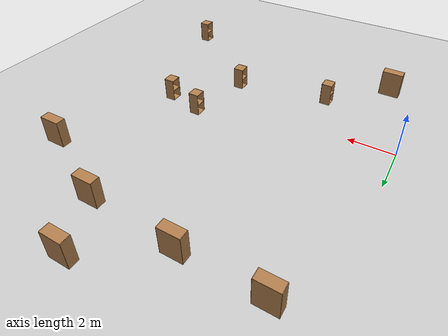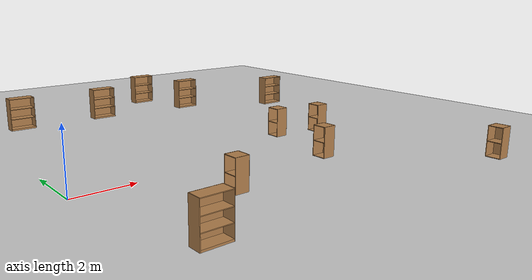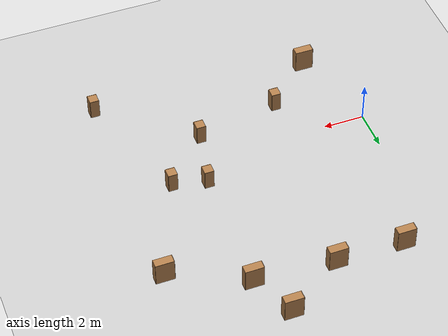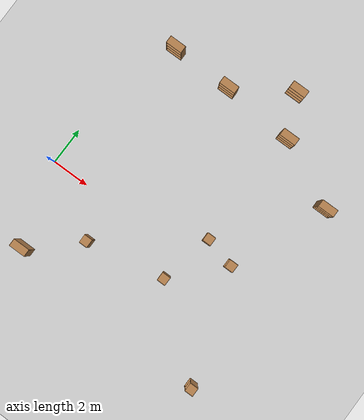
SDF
<sdf version="1.6">
 <world name="default">
  <model name="ground_plane">
   <static>1</static>
   <link name="link">
    <collision name="collision">
     <geometry><plane><normal>0 0 1</normal><size>100 100</size></plane></geometry>
     <surface><friction><ode><mu>100</mu><mu2>50</mu2></ode></friction></surface>
    </collision>
    <visual name="visual">
     <cast_shadows>0</cast_shadows>
     <geometry><plane><normal>0 0 1</normal><size>100 100</size></plane></geometry>
     <material>
      <script><uri>file://media/materials/scripts/gazebo.material</uri><name>Gazebo/Grey</name></script>
     </material>
    </visual>
   </link>
  </model>
  <model name="bookshelf_6">
   <static>1</static>
   <link name="link">
    <inertial><mass>1</mass></inertial>
    <collision name="back">
     <pose>0 0.005 0.6 0 -0 0</pose>
     <geometry><box><size>0.9 0.01 1.2</size></box></geometry>
    </collision>
    <visual name="visual1">
     <pose>0 0.005 0.6 0 -0 0</pose>
     <geometry><box><size>0.9 0.01 1.2</size></box></geometry>
     <material>
      <script><uri>file://media/materials/scripts/gazebo.material</uri><name>Gazebo/Wood</name></script>
     </material>
    </visual>
    <collision name="left_side">
     <pose>0.45 -0.195 0.6 0 -0 0</pose>
     <geometry><box><size>0.02 0.4 1.2</size></box></geometry>
    </collision>
    <visual name="visual2">
     <pose>0.45 -0.195 0.6 0 -0 0</pose>
     <geometry><box><size>0.02 0.4 1.2</size></box></geometry>
     <material>
      <script><uri>file://media/materials/scripts/gazebo.material</uri><name>Gazebo/Wood</name></script>
     </material>
    </visual>
    <collision name="right_side">
     <pose>-0.45 -0.195 0.6 0 -0 0</pose>
     <geometry><box><size>0.02 0.4 1.2</size></box></geometry>
    </collision>
    <visual name="visual3">
     <pose>-0.45 -0.195 0.6 0 -0 0</pose>
     <geometry><box><size>0.02 0.4 1.2</size></box></geometry>
     <material>
      <script><uri>file://media/materials/scripts/gazebo.material</uri><name>Gazebo/Wood</name></script>
     </material>
    </visual>
    <collision name="bottom">
     <pose>0 -0.195 0.03 0 -0 0</pose>
     <geometry><box><size>0.88 0.4 0.06</size></box></geometry>
    </collision>
    <visual name="visual4">
     <pose>0 -0.195 0.03 0 -0 0</pose>
     <geometry><box><size>0.88 0.4 0.06</size></box></geometry>
     <material>
      <script><uri>file://media/materials/scripts/gazebo.material</uri><name>Gazebo/Wood</name></script>
     </material>
    </visual>
    <collision name="top">
     <pose>0 -0.195 1.19 0 -0 0</pose>
     <geometry><box><size>0.88 0.4 0.02</size></box></geometry>
    </collision>
    <visual name="visual5">
     <pose>0 -0.195 1.19 0 -0 0</pose>
     <geometry><box><size>0.88 0.4 0.02</size></box></geometry>
     <material>
      <script><uri>file://media/materials/scripts/gazebo.material</uri><name>Gazebo/Wood</name></script>
     </material>
    </visual>
    <collision name="low_shelf">
     <pose>0 -0.195 0.43 0 -0 0</pose>
     <geometry><box><size>0.88 0.4 0.02</size></box></geometry>
    </collision>
    <visual name="visual6">
     <pose>0 -0.195 0.43 0 -0 0</pose>
     <geometry><box><size>0.88 0.4 0.02</size></box></geometry>
     <material>
      <script><uri>file://media/materials/scripts/gazebo.material</uri><name>Gazebo/Wood</name></script>
     </material>
    </visual>
    <collision name="high_shelf">
     <pose>0 -0.195 0.8 0 -0 0</pose>
     <geometry><box><size>0.88 0.4 0.02</size></box></geometry>
    </collision>
    <visual name="visual7">
     <pose>0 -0.195 0.8 0 -0 0</pose>
     <geometry><box><size>0.88 0.4 0.02</size></box></geometry>
     <material>
      <script><uri>file://media/materials/scripts/gazebo.material</uri><name>Gazebo/Wood</name></script>
     </material>
    </visual>
   </link>
   <pose>1.39235 -4.15246 0 0 -0 0</pose>
  </model>
  <model name="bookshelf_7">
   <static>1</static>
   <link name="link">
    <inertial><mass>1</mass></inertial>
    <collision name="back">
     <pose>0 0.005 0.6 0 -0 0</pose>
     <geometry><box><size>0.9 0.01 1.2</size></box></geometry>
    </collision>
    <visual name="visual1">
     <pose>0 0.005 0.6 0 -0 0</pose>
     <geometry><box><size>0.9 0.01 1.2</size></box></geometry>
     <material>
      <script><uri>file://media/materials/scripts/gazebo.material</uri><name>Gazebo/Wood</name></script>
     </material>
    </visual>
    <collision name="left_side">
     <pose>0.45 -0.195 0.6 0 -0 0</pose>
     <geometry><box><size>0.02 0.4 1.2</size></box></geometry>
    </collision>
    <visual name="visual2">
     <pose>0.45 -0.195 0.6 0 -0 0</pose>
     <geometry><box><size>0.02 0.4 1.2</size></box></geometry>
     <material>
      <script><uri>file://media/materials/scripts/gazebo.material</uri><name>Gazebo/Wood</name></script>
     </material>
    </visual>
    <collision name="right_side">
     <pose>-0.45 -0.195 0.6 0 -0 0</pose>
     <geometry><box><size>0.02 0.4 1.2</size></box></geometry>
    </collision>
    <visual name="visual3">
     <pose>-0.45 -0.195 0.6 0 -0 0</pose>
     <geometry><box><size>0.02 0.4 1.2</size></box></geometry>
     <material>
      <script><uri>file://media/materials/scripts/gazebo.material</uri><name>Gazebo/Wood</name></script>
     </material>
    </visual>
    <collision name="bottom">
     <pose>0 -0.195 0.03 0 -0 0</pose>
     <geometry><box><size>0.88 0.4 0.06</size></box></geometry>
    </collision>
    <visual name="visual4">
     <pose>0 -0.195 0.03 0 -0 0</pose>
     <geometry><box><size>0.88 0.4 0.06</size></box></geometry>
     <material>
      <script><uri>file://media/materials/scripts/gazebo.material</uri><name>Gazebo/Wood</name></script>
     </material>
    </visual>
    <collision name="top">
     <pose>0 -0.195 1.19 0 -0 0</pose>
     <geometry><box><size>0.88 0.4 0.02</size></box></geometry>
    </collision>
    <visual name="visual5">
     <pose>0 -0.195 1.19 0 -0 0</pose>
     <geometry><box><size>0.88 0.4 0.02</size></box></geometry>
     <material>
      <script><uri>file://media/materials/scripts/gazebo.material</uri><name>Gazebo/Wood</name></script>
     </material>
    </visual>
    <collision name="low_shelf">
     <pose>0 -0.195 0.43 0 -0 0</pose>
     <geometry><box><size>0.88 0.4 0.02</size></box></geometry>
    </collision>
    <visual name="visual6">
     <pose>0 -0.195 0.43 0 -0 0</pose>
     <geometry><box><size>0.88 0.4 0.02</size></box></geometry>
     <material>
      <script><uri>file://media/materials/scripts/gazebo.material</uri><name>Gazebo/Wood</name></script>
     </material>
    </visual>
    <collision name="high_shelf">
     <pose>0 -0.195 0.8 0 -0 0</pose>
     <geometry><box><size>0.88 0.4 0.02</size></box></geometry>
    </collision>
    <visual name="visual7">
     <pose>0 -0.195 0.8 0 -0 0</pose>
     <geometry><box><size>0.88 0.4 0.02</size></box></geometry>
     <material>
      <script><uri>file://media/materials/scripts/gazebo.material</uri><name>Gazebo/Wood</name></script>
     </material>
    </visual>
   </link>
   <pose>12.3093 6.29866 0 0 -0 0</pose>
  </model>
  <model name="cabinet_0">
   <static>1</static>
   <link name="cabinet_bottom_plate">
    <inertial>
     <pose>0 0 -1 0 -0 0</pose>
     <inertia><ixx>2.05</ixx><ixy>0</ixy><ixz>0</ixz><iyy>2.05</iyy><iyz>0</iyz><izz>2.05</izz></inertia>
     <mass>25</mass>
    </inertial>
    <collision name="cabinet_bottom_plate_geom">
     <pose>0 0 0.01 0 -0 0</pose>
     <geometry><box><size>0.45 0.45 0.02</size></box></geometry>
    </collision>
    <visual name="cabinet_bottom_plate_geom_visual">
     <pose>0 0 0.01 0 -0 0</pose>
     <geometry><box><size>0.45 0.45 0.02</size></box></geometry>
     <material>
      <script><uri>file://media/materials/scripts/gazebo.material</uri><name>Gazebo/Wood</name></script>
     </material>
    </visual>
    <collision name="cabinet_bottom_plate_geom_cabinet_back_plate">
     <pose>0.235 0 0.51 0 -0 0</pose>
     <geometry><box><size>0.02 0.45 1.02</size></box></geometry>
    </collision>
    <visual name="cabinet_bottom_plate_geom_cabinet_back_plate_visual">
     <pose>0.235 0 0.51 0 -0 0</pose>
     <geometry><box><size>0.02 0.45 1.02</size></box></geometry>
     <material>
      <script><uri>file://media/materials/scripts/gazebo.material</uri><name>Gazebo/Wood</name></script>
     </material>
    </visual>
    <collision name="cabinet_bottom_plate_geom_cabinet_left_plate">
     <pose>0 0.235 0.51 0 -0 0</pose>
     <geometry><box><size>0.45 0.02 1.02</size></box></geometry>
    </collision>
    <visual name="cabinet_bottom_plate_geom_cabinet_left_plate_visual">
     <pose>0 0.235 0.51 0 -0 0</pose>
     <geometry><box><size>0.45 0.02 1.02</size></box></geometry>
     <material>
      <script><uri>file://media/materials/scripts/gazebo.material</uri><name>Gazebo/Wood</name></script>
     </material>
    </visual>
    <collision name="cabinet_bottom_plate_geom_cabinet_middle_plate">
     <pose>0 0 0.51 0 -0 0</pose>
     <geometry><box><size>0.45 0.45 0.02</size></box></geometry>
    </collision>
    <visual name="cabinet_bottom_plate_geom_cabinet_middle_plate_visual">
     <pose>0 0 0.51 0 -0 0</pose>
     <geometry><box><size>0.45 0.45 0.02</size></box></geometry>
     <material>
      <script><uri>file://media/materials/scripts/gazebo.material</uri><name>Gazebo/Wood</name></script>
     </material>
    </visual>
    <collision name="cabinet_bottom_plate_geom_cabinet_right_plate">
     <pose>0 -0.235 0.51 0 -0 0</pose>
     <geometry><box><size>0.45 0.02 1.02</size></box></geometry>
    </collision>
    <visual name="cabinet_bottom_plate_geom_cabinet_right_plate_visual">
     <pose>0 -0.235 0.51 0 -0 0</pose>
     <geometry><box><size>0.45 0.02 1.02</size></box></geometry>
     <material>
      <script><uri>file://media/materials/scripts/gazebo.material</uri><name>Gazebo/Wood</name></script>
     </material>
    </visual>
    <collision name="cabinet_bottom_plate_geom_cabinet_top_plate">
     <pose>0 0 1.01 0 -0 0</pose>
     <geometry><box><size>0.45 0.45 0.02</size></box></geometry>
    </collision>
    <visual name="cabinet_bottom_plate_geom_cabinet_top_plate_visual">
     <pose>0 0 1.01 0 -0 0</pose>
     <geometry><box><size>0.45 0.45 0.02</size></box></geometry>
     <material>
      <script><uri>file://media/materials/scripts/gazebo.material</uri><name>Gazebo/Wood</name></script>
     </material>
    </visual>
   </link>
   <pose>10.2042 1.0534 0 0 -0 0</pose>
  </model>
  <model name="cabinet_1">
   <static>1</static>
   <link name="cabinet_bottom_plate">
    <inertial>
     <pose>0 0 -1 0 -0 0</pose>
     <inertia><ixx>2.05</ixx><ixy>0</ixy><ixz>0</ixz><iyy>2.05</iyy><iyz>0</iyz><izz>2.05</izz></inertia>
     <mass>25</mass>
    </inertial>
    <collision name="cabinet_bottom_plate_geom">
     <pose>0 0 0.01 0 -0 0</pose>
     <geometry><box><size>0.45 0.45 0.02</size></box></geometry>
    </collision>
    <visual name="cabinet_bottom_plate_geom_visual">
     <pose>0 0 0.01 0 -0 0</pose>
     <geometry><box><size>0.45 0.45 0.02</size></box></geometry>
     <material>
      <script><uri>file://media/materials/scripts/gazebo.material</uri><name>Gazebo/Wood</name></script>
     </material>
    </visual>
    <collision name="cabinet_bottom_plate_geom_cabinet_back_plate">
     <pose>0.235 0 0.51 0 -0 0</pose>
     <geometry><box><size>0.02 0.45 1.02</size></box></geometry>
    </collision>
    <visual name="cabinet_bottom_plate_geom_cabinet_back_plate_visual">
     <pose>0.235 0 0.51 0 -0 0</pose>
     <geometry><box><size>0.02 0.45 1.02</size></box></geometry>
     <material>
      <script><uri>file://media/materials/scripts/gazebo.material</uri><name>Gazebo/Wood</name></script>
     </material>
    </visual>
    <collision name="cabinet_bottom_plate_geom_cabinet_left_plate">
     <pose>0 0.235 0.51 0 -0 0</pose>
     <geometry><box><size>0.45 0.02 1.02</size></box></geometry>
    </collision>
    <visual name="cabinet_bottom_plate_geom_cabinet_left_plate_visual">
     <pose>0 0.235 0.51 0 -0 0</pose>
     <geometry><box><size>0.45 0.02 1.02</size></box></geometry>
     <material>
      <script><uri>file://media/materials/scripts/gazebo.material</uri><name>Gazebo/Wood</name></script>
     </material>
    </visual>
    <collision name="cabinet_bottom_plate_geom_cabinet_middle_plate">
     <pose>0 0 0.51 0 -0 0</pose>
     <geometry><box><size>0.45 0.45 0.02</size></box></geometry>
    </collision>
    <visual name="cabinet_bottom_plate_geom_cabinet_middle_plate_visual">
     <pose>0 0 0.51 0 -0 0</pose>
     <geometry><box><size>0.45 0.45 0.02</size></box></geometry>
     <material>
      <script><uri>file://media/materials/scripts/gazebo.material</uri><name>Gazebo/Wood</name></script>
     </material>
    </visual>
    <collision name="cabinet_bottom_plate_geom_cabinet_right_plate">
     <pose>0 -0.235 0.51 0 -0 0</pose>
     <geometry><box><size>0.45 0.02 1.02</size></box></geometry>
    </collision>
    <visual name="cabinet_bottom_plate_geom_cabinet_right_plate_visual">
     <pose>0 -0.235 0.51 0 -0 0</pose>
     <geometry><box><size>0.45 0.02 1.02</size></box></geometry>
     <material>
      <script><uri>file://media/materials/scripts/gazebo.material</uri><name>Gazebo/Wood</name></script>
     </material>
    </visual>
    <collision name="cabinet_bottom_plate_geom_cabinet_top_plate">
     <pose>0 0 1.01 0 -0 0</pose>
     <geometry><box><size>0.45 0.45 0.02</size></box></geometry>
    </collision>
    <visual name="cabinet_bottom_plate_geom_cabinet_top_plate_visual">
     <pose>0 0 1.01 0 -0 0</pose>
     <geometry><box><size>0.45 0.45 0.02</size></box></geometry>
     <material>
      <script><uri>file://media/materials/scripts/gazebo.material</uri><name>Gazebo/Wood</name></script>
     </material>
    </visual>
   </link>
   <pose>3.76414 -2.1912 0 0 -0 0</pose>
  </model>
  <model name="cabinet_3">
   <static>1</static>
   <link name="cabinet_bottom_plate">
    <inertial>
     <pose>0 0 -1 0 -0 0</pose>
     <inertia><ixx>2.05</ixx><ixy>0</ixy><ixz>0</ixz><iyy>2.05</iyy><iyz>0</iyz><izz>2.05</izz></inertia>
     <mass>25</mass>
    </inertial>
    <collision name="cabinet_bottom_plate_geom">
     <pose>0 0 0.01 0 -0 0</pose>
     <geometry><box><size>0.45 0.45 0.02</size></box></geometry>
    </collision>
    <visual name="cabinet_bottom_plate_geom_visual">
     <pose>0 0 0.01 0 -0 0</pose>
     <geometry><box><size>0.45 0.45 0.02</size></box></geometry>
     <material>
      <script><uri>file://media/materials/scripts/gazebo.material</uri><name>Gazebo/Wood</name></script>
     </material>
    </visual>
    <collision name="cabinet_bottom_plate_geom_cabinet_back_plate">
     <pose>0.235 0 0.51 0 -0 0</pose>
     <geometry><box><size>0.02 0.45 1.02</size></box></geometry>
    </collision>
    <visual name="cabinet_bottom_plate_geom_cabinet_back_plate_visual">
     <pose>0.235 0 0.51 0 -0 0</pose>
     <geometry><box><size>0.02 0.45 1.02</size></box></geometry>
     <material>
      <script><uri>file://media/materials/scripts/gazebo.material</uri><name>Gazebo/Wood</name></script>
     </material>
    </visual>
    <collision name="cabinet_bottom_plate_geom_cabinet_left_plate">
     <pose>0 0.235 0.51 0 -0 0</pose>
     <geometry><box><size>0.45 0.02 1.02</size></box></geometry>
    </collision>
    <visual name="cabinet_bottom_plate_geom_cabinet_left_plate_visual">
     <pose>0 0.235 0.51 0 -0 0</pose>
     <geometry><box><size>0.45 0.02 1.02</size></box></geometry>
     <material>
      <script><uri>file://media/materials/scripts/gazebo.material</uri><name>Gazebo/Wood</name></script>
     </material>
    </visual>
    <collision name="cabinet_bottom_plate_geom_cabinet_middle_plate">
     <pose>0 0 0.51 0 -0 0</pose>
     <geometry><box><size>0.45 0.45 0.02</size></box></geometry>
    </collision>
    <visual name="cabinet_bottom_plate_geom_cabinet_middle_plate_visual">
     <pose>0 0 0.51 0 -0 0</pose>
     <geometry><box><size>0.45 0.45 0.02</size></box></geometry>
     <material>
      <script><uri>file://media/materials/scripts/gazebo.material</uri><name>Gazebo/Wood</name></script>
     </material>
    </visual>
    <collision name="cabinet_bottom_plate_geom_cabinet_right_plate">
     <pose>0 -0.235 0.51 0 -0 0</pose>
     <geometry><box><size>0.45 0.02 1.02</size></box></geometry>
    </collision>
    <visual name="cabinet_bottom_plate_geom_cabinet_right_plate_visual">
     <pose>0 -0.235 0.51 0 -0 0</pose>
     <geometry><box><size>0.45 0.02 1.02</size></box></geometry>
     <material>
      <script><uri>file://media/materials/scripts/gazebo.material</uri><name>Gazebo/Wood</name></script>
     </material>
    </visual>
    <collision name="cabinet_bottom_plate_geom_cabinet_top_plate">
     <pose>0 0 1.01 0 -0 0</pose>
     <geometry><box><size>0.45 0.45 0.02</size></box></geometry>
    </collision>
    <visual name="cabinet_bottom_plate_geom_cabinet_top_plate_visual">
     <pose>0 0 1.01 0 -0 0</pose>
     <geometry><box><size>0.45 0.45 0.02</size></box></geometry>
     <material>
      <script><uri>file://media/materials/scripts/gazebo.material</uri><name>Gazebo/Wood</name></script>
     </material>
    </visual>
   </link>
   <pose>12.1732 -4.89002 0 0 -0 0</pose>
  </model>
  <model name="bookshelf_9">
   <static>1</static>
   <link name="link">
    <inertial><mass>1</mass></inertial>
    <collision name="back">
     <pose>0 0.005 0.6 0 -0 0</pose>
     <geometry><box><size>0.9 0.01 1.2</size></box></geometry>
    </collision>
    <visual name="visual1">
     <pose>0 0.005 0.6 0 -0 0</pose>
     <geometry><box><size>0.9 0.01 1.2</size></box></geometry>
     <material>
      <script><uri>file://media/materials/scripts/gazebo.material</uri><name>Gazebo/Wood</name></script>
     </material>
    </visual>
    <collision name="left_side">
     <pose>0.45 -0.195 0.6 0 -0 0</pose>
     <geometry><box><size>0.02 0.4 1.2</size></box></geometry>
    </collision>
    <visual name="visual2">
     <pose>0.45 -0.195 0.6 0 -0 0</pose>
     <geometry><box><size>0.02 0.4 1.2</size></box></geometry>
     <material>
      <script><uri>file://media/materials/scripts/gazebo.material</uri><name>Gazebo/Wood</name></script>
     </material>
    </visual>
    <collision name="right_side">
     <pose>-0.45 -0.195 0.6 0 -0 0</pose>
     <geometry><box><size>0.02 0.4 1.2</size></box></geometry>
    </collision>
    <visual name="visual3">
     <pose>-0.45 -0.195 0.6 0 -0 0</pose>
     <geometry><box><size>0.02 0.4 1.2</size></box></geometry>
     <material>
      <script><uri>file://media/materials/scripts/gazebo.material</uri><name>Gazebo/Wood</name></script>
     </material>
    </visual>
    <collision name="bottom">
     <pose>0 -0.195 0.03 0 -0 0</pose>
     <geometry><box><size>0.88 0.4 0.06</size></box></geometry>
    </collision>
    <visual name="visual4">
     <pose>0 -0.195 0.03 0 -0 0</pose>
     <geometry><box><size>0.88 0.4 0.06</size></box></geometry>
     <material>
      <script><uri>file://media/materials/scripts/gazebo.material</uri><name>Gazebo/Wood</name></script>
     </material>
    </visual>
    <collision name="top">
     <pose>0 -0.195 1.19 0 -0 0</pose>
     <geometry><box><size>0.88 0.4 0.02</size></box></geometry>
    </collision>
    <visual name="visual5">
     <pose>0 -0.195 1.19 0 -0 0</pose>
     <geometry><box><size>0.88 0.4 0.02</size></box></geometry>
     <material>
      <script><uri>file://media/materials/scripts/gazebo.material</uri><name>Gazebo/Wood</name></script>
     </material>
    </visual>
    <collision name="low_shelf">
     <pose>0 -0.195 0.43 0 -0 0</pose>
     <geometry><box><size>0.88 0.4 0.02</size></box></geometry>
    </collision>
    <visual name="visual6">
     <pose>0 -0.195 0.43 0 -0 0</pose>
     <geometry><box><size>0.88 0.4 0.02</size></box></geometry>
     <material>
      <script><uri>file://media/materials/scripts/gazebo.material</uri><name>Gazebo/Wood</name></script>
     </material>
    </visual>
    <collision name="high_shelf">
     <pose>0 -0.195 0.8 0 -0 0</pose>
     <geometry><box><size>0.88 0.4 0.02</size></box></geometry>
    </collision>
    <visual name="visual7">
     <pose>0 -0.195 0.8 0 -0 0</pose>
     <geometry><box><size>0.88 0.4 0.02</size></box></geometry>
     <material>
      <script><uri>file://media/materials/scripts/gazebo.material</uri><name>Gazebo/Wood</name></script>
     </material>
    </visual>
   </link>
   <pose>7.74731 10.1873 0 0 -0 0</pose>
  </model>
  <model name="bookshelf_10">
   <static>1</static>
   <link name="link">
    <inertial><mass>1</mass></inertial>
    <collision name="back">
     <pose>0 0.005 0.6 0 -0 0</pose>
     <geometry><box><size>0.9 0.01 1.2</size></box></geometry>
    </collision>
    <visual name="visual1">
     <pose>0 0.005 0.6 0 -0 0</pose>
     <geometry><box><size>0.9 0.01 1.2</size></box></geometry>
     <material>
      <script><uri>file://media/materials/scripts/gazebo.material</uri><name>Gazebo/Wood</name></script>
     </material>
    </visual>
    <collision name="left_side">
     <pose>0.45 -0.195 0.6 0 -0 0</pose>
     <geometry><box><size>0.02 0.4 1.2</size></box></geometry>
    </collision>
    <visual name="visual2">
     <pose>0.45 -0.195 0.6 0 -0 0</pose>
     <geometry><box><size>0.02 0.4 1.2</size></box></geometry>
     <material>
      <script><uri>file://media/materials/scripts/gazebo.material</uri><name>Gazebo/Wood</name></script>
     </material>
    </visual>
    <collision name="right_side">
     <pose>-0.45 -0.195 0.6 0 -0 0</pose>
     <geometry><box><size>0.02 0.4 1.2</size></box></geometry>
    </collision>
    <visual name="visual3">
     <pose>-0.45 -0.195 0.6 0 -0 0</pose>
     <geometry><box><size>0.02 0.4 1.2</size></box></geometry>
     <material>
      <script><uri>file://media/materials/scripts/gazebo.material</uri><name>Gazebo/Wood</name></script>
     </material>
    </visual>
    <collision name="bottom">
     <pose>0 -0.195 0.03 0 -0 0</pose>
     <geometry><box><size>0.88 0.4 0.06</size></box></geometry>
    </collision>
    <visual name="visual4">
     <pose>0 -0.195 0.03 0 -0 0</pose>
     <geometry><box><size>0.88 0.4 0.06</size></box></geometry>
     <material>
      <script><uri>file://media/materials/scripts/gazebo.material</uri><name>Gazebo/Wood</name></script>
     </material>
    </visual>
    <collision name="top">
     <pose>0 -0.195 1.19 0 -0 0</pose>
     <geometry><box><size>0.88 0.4 0.02</size></box></geometry>
    </collision>
    <visual name="visual5">
     <pose>0 -0.195 1.19 0 -0 0</pose>
     <geometry><box><size>0.88 0.4 0.02</size></box></geometry>
     <material>
      <script><uri>file://media/materials/scripts/gazebo.material</uri><name>Gazebo/Wood</name></script>
     </material>
    </visual>
    <collision name="low_shelf">
     <pose>0 -0.195 0.43 0 -0 0</pose>
     <geometry><box><size>0.88 0.4 0.02</size></box></geometry>
    </collision>
    <visual name="visual6">
     <pose>0 -0.195 0.43 0 -0 0</pose>
     <geometry><box><size>0.88 0.4 0.02</size></box></geometry>
     <material>
      <script><uri>file://media/materials/scripts/gazebo.material</uri><name>Gazebo/Wood</name></script>
     </material>
    </visual>
    <collision name="high_shelf">
     <pose>0 -0.195 0.8 0 -0 0</pose>
     <geometry><box><size>0.88 0.4 0.02</size></box></geometry>
    </collision>
    <visual name="visual7">
     <pose>0 -0.195 0.8 0 -0 0</pose>
     <geometry><box><size>0.88 0.4 0.02</size></box></geometry>
     <material>
      <script><uri>file://media/materials/scripts/gazebo.material</uri><name>Gazebo/Wood</name></script>
     </material>
    </visual>
   </link>
   <pose>8.74404 8.01465 0 0 -0 0</pose>
  </model>
  <model name="bookshelf_11">
   <static>1</static>
   <link name="link">
    <inertial><mass>1</mass></inertial>
    <collision name="back">
     <pose>0 0.005 0.6 0 -0 0</pose>
     <geometry><box><size>0.9 0.01 1.2</size></box></geometry>
    </collision>
    <visual name="visual1">
     <pose>0 0.005 0.6 0 -0 0</pose>
     <geometry><box><size>0.9 0.01 1.2</size></box></geometry>
     <material>
      <script><uri>file://media/materials/scripts/gazebo.material</uri><name>Gazebo/Wood</name></script>
     </material>
    </visual>
    <collision name="left_side">
     <pose>0.45 -0.195 0.6 0 -0 0</pose>
     <geometry><box><size>0.02 0.4 1.2</size></box></geometry>
    </collision>
    <visual name="visual2">
     <pose>0.45 -0.195 0.6 0 -0 0</pose>
     <geometry><box><size>0.02 0.4 1.2</size></box></geometry>
     <material>
      <script><uri>file://media/materials/scripts/gazebo.material</uri><name>Gazebo/Wood</name></script>
     </material>
    </visual>
    <collision name="right_side">
     <pose>-0.45 -0.195 0.6 0 -0 0</pose>
     <geometry><box><size>0.02 0.4 1.2</size></box></geometry>
    </collision>
    <visual name="visual3">
     <pose>-0.45 -0.195 0.6 0 -0 0</pose>
     <geometry><box><size>0.02 0.4 1.2</size></box></geometry>
     <material>
      <script><uri>file://media/materials/scripts/gazebo.material</uri><name>Gazebo/Wood</name></script>
     </material>
    </visual>
    <collision name="bottom">
     <pose>0 -0.195 0.03 0 -0 0</pose>
     <geometry><box><size>0.88 0.4 0.06</size></box></geometry>
    </collision>
    <visual name="visual4">
     <pose>0 -0.195 0.03 0 -0 0</pose>
     <geometry><box><size>0.88 0.4 0.06</size></box></geometry>
     <material>
      <script><uri>file://media/materials/scripts/gazebo.material</uri><name>Gazebo/Wood</name></script>
     </material>
    </visual>
    <collision name="top">
     <pose>0 -0.195 1.19 0 -0 0</pose>
     <geometry><box><size>0.88 0.4 0.02</size></box></geometry>
    </collision>
    <visual name="visual5">
     <pose>0 -0.195 1.19 0 -0 0</pose>
     <geometry><box><size>0.88 0.4 0.02</size></box></geometry>
     <material>
      <script><uri>file://media/materials/scripts/gazebo.material</uri><name>Gazebo/Wood</name></script>
     </material>
    </visual>
    <collision name="low_shelf">
     <pose>0 -0.195 0.43 0 -0 0</pose>
     <geometry><box><size>0.88 0.4 0.02</size></box></geometry>
    </collision>
    <visual name="visual6">
     <pose>0 -0.195 0.43 0 -0 0</pose>
     <geometry><box><size>0.88 0.4 0.02</size></box></geometry>
     <material>
      <script><uri>file://media/materials/scripts/gazebo.material</uri><name>Gazebo/Wood</name></script>
     </material>
    </visual>
    <collision name="high_shelf">
     <pose>0 -0.195 0.8 0 -0 0</pose>
     <geometry><box><size>0.88 0.4 0.02</size></box></geometry>
    </collision>
    <visual name="visual7">
     <pose>0 -0.195 0.8 0 -0 0</pose>
     <geometry><box><size>0.88 0.4 0.02</size></box></geometry>
     <material>
      <script><uri>file://media/materials/scripts/gazebo.material</uri><name>Gazebo/Wood</name></script>
     </material>
    </visual>
   </link>
   <pose>1.57094 8.38005 0 0 -0 0</pose>
  </model>
  <model name="bookshelf_12">
   <static>1</static>
   <link name="link">
    <inertial><mass>1</mass></inertial>
    <collision name="back">
     <pose>0 0.005 0.6 0 -0 0</pose>
     <geometry><box><size>0.9 0.01 1.2</size></box></geometry>
    </collision>
    <visual name="visual1">
     <pose>0 0.005 0.6 0 -0 0</pose>
     <geometry><box><size>0.9 0.01 1.2</size></box></geometry>
     <material>
      <script><uri>file://media/materials/scripts/gazebo.material</uri><name>Gazebo/Wood</name></script>
     </material>
    </visual>
    <collision name="left_side">
     <pose>0.45 -0.195 0.6 0 -0 0</pose>
     <geometry><box><size>0.02 0.4 1.2</size></box></geometry>
    </collision>
    <visual name="visual2">
     <pose>0.45 -0.195 0.6 0 -0 0</pose>
     <geometry><box><size>0.02 0.4 1.2</size></box></geometry>
     <material>
      <script><uri>file://media/materials/scripts/gazebo.material</uri><name>Gazebo/Wood</name></script>
     </material>
    </visual>
    <collision name="right_side">
     <pose>-0.45 -0.195 0.6 0 -0 0</pose>
     <geometry><box><size>0.02 0.4 1.2</size></box></geometry>
    </collision>
    <visual name="visual3">
     <pose>-0.45 -0.195 0.6 0 -0 0</pose>
     <geometry><box><size>0.02 0.4 1.2</size></box></geometry>
     <material>
      <script><uri>file://media/materials/scripts/gazebo.material</uri><name>Gazebo/Wood</name></script>
     </material>
    </visual>
    <collision name="bottom">
     <pose>0 -0.195 0.03 0 -0 0</pose>
     <geometry><box><size>0.88 0.4 0.06</size></box></geometry>
    </collision>
    <visual name="visual4">
     <pose>0 -0.195 0.03 0 -0 0</pose>
     <geometry><box><size>0.88 0.4 0.06</size></box></geometry>
     <material>
      <script><uri>file://media/materials/scripts/gazebo.material</uri><name>Gazebo/Wood</name></script>
     </material>
    </visual>
    <collision name="top">
     <pose>0 -0.195 1.19 0 -0 0</pose>
     <geometry><box><size>0.88 0.4 0.02</size></box></geometry>
    </collision>
    <visual name="visual5">
     <pose>0 -0.195 1.19 0 -0 0</pose>
     <geometry><box><size>0.88 0.4 0.02</size></box></geometry>
     <material>
      <script><uri>file://media/materials/scripts/gazebo.material</uri><name>Gazebo/Wood</name></script>
     </material>
    </visual>
    <collision name="low_shelf">
     <pose>0 -0.195 0.43 0 -0 0</pose>
     <geometry><box><size>0.88 0.4 0.02</size></box></geometry>
    </collision>
    <visual name="visual6">
     <pose>0 -0.195 0.43 0 -0 0</pose>
     <geometry><box><size>0.88 0.4 0.02</size></box></geometry>
     <material>
      <script><uri>file://media/materials/scripts/gazebo.material</uri><name>Gazebo/Wood</name></script>
     </material>
    </visual>
    <collision name="high_shelf">
     <pose>0 -0.195 0.8 0 -0 0</pose>
     <geometry><box><size>0.88 0.4 0.02</size></box></geometry>
    </collision>
    <visual name="visual7">
     <pose>0 -0.195 0.8 0 -0 0</pose>
     <geometry><box><size>0.88 0.4 0.02</size></box></geometry>
     <material>
      <script><uri>file://media/materials/scripts/gazebo.material</uri><name>Gazebo/Wood</name></script>
     </material>
    </visual>
   </link>
   <pose>4.86337 8.32429 0 0 -0 0</pose>
  </model>
  <model name="cabinet_6">
   <static>1</static>
   <link name="cabinet_bottom_plate">
    <inertial>
     <pose>0 0 -1 0 -0 0</pose>
     <inertia><ixx>2.05</ixx><ixy>0</ixy><ixz>0</ixz><iyy>2.05</iyy><iyz>0</iyz><izz>2.05</izz></inertia>
     <mass>25</mass>
    </inertial>
    <collision name="cabinet_bottom_plate_geom">
     <pose>0 0 0.01 0 -0 0</pose>
     <geometry><box><size>0.45 0.45 0.02</size></box></geometry>
    </collision>
    <visual name="cabinet_bottom_plate_geom_visual">
     <pose>0 0 0.01 0 -0 0</pose>
     <geometry><box><size>0.45 0.45 0.02</size></box></geometry>
     <material>
      <script><uri>file://media/materials/scripts/gazebo.material</uri><name>Gazebo/Wood</name></script>
     </material>
    </visual>
    <collision name="cabinet_bottom_plate_geom_cabinet_back_plate">
     <pose>0.235 0 0.51 0 -0 0</pose>
     <geometry><box><size>0.02 0.45 1.02</size></box></geometry>
    </collision>
    <visual name="cabinet_bottom_plate_geom_cabinet_back_plate_visual">
     <pose>0.235 0 0.51 0 -0 0</pose>
     <geometry><box><size>0.02 0.45 1.02</size></box></geometry>
     <material>
      <script><uri>file://media/materials/scripts/gazebo.material</uri><name>Gazebo/Wood</name></script>
     </material>
    </visual>
    <collision name="cabinet_bottom_plate_geom_cabinet_left_plate">
     <pose>0 0.235 0.51 0 -0 0</pose>
     <geometry><box><size>0.45 0.02 1.02</size></box></geometry>
    </collision>
    <visual name="cabinet_bottom_plate_geom_cabinet_left_plate_visual">
     <pose>0 0.235 0.51 0 -0 0</pose>
     <geometry><box><size>0.45 0.02 1.02</size></box></geometry>
     <material>
      <script><uri>file://media/materials/scripts/gazebo.material</uri><name>Gazebo/Wood</name></script>
     </material>
    </visual>
    <collision name="cabinet_bottom_plate_geom_cabinet_middle_plate">
     <pose>0 0 0.51 0 -0 0</pose>
     <geometry><box><size>0.45 0.45 0.02</size></box></geometry>
    </collision>
    <visual name="cabinet_bottom_plate_geom_cabinet_middle_plate_visual">
     <pose>0 0 0.51 0 -0 0</pose>
     <geometry><box><size>0.45 0.45 0.02</size></box></geometry>
     <material>
      <script><uri>file://media/materials/scripts/gazebo.material</uri><name>Gazebo/Wood</name></script>
     </material>
    </visual>
    <collision name="cabinet_bottom_plate_geom_cabinet_right_plate">
     <pose>0 -0.235 0.51 0 -0 0</pose>
     <geometry><box><size>0.45 0.02 1.02</size></box></geometry>
    </collision>
    <visual name="cabinet_bottom_plate_geom_cabinet_right_plate_visual">
     <pose>0 -0.235 0.51 0 -0 0</pose>
     <geometry><box><size>0.45 0.02 1.02</size></box></geometry>
     <material>
      <script><uri>file://media/materials/scripts/gazebo.material</uri><name>Gazebo/Wood</name></script>
     </material>
    </visual>
    <collision name="cabinet_bottom_plate_geom_cabinet_top_plate">
     <pose>0 0 1.01 0 -0 0</pose>
     <geometry><box><size>0.45 0.45 0.02</size></box></geometry>
    </collision>
    <visual name="cabinet_bottom_plate_geom_cabinet_top_plate_visual">
     <pose>0 0 1.01 0 -0 0</pose>
     <geometry><box><size>0.45 0.45 0.02</size></box></geometry>
     <material>
      <script><uri>file://media/materials/scripts/gazebo.material</uri><name>Gazebo/Wood</name></script>
     </material>
    </visual>
   </link>
   <pose>7.92529 -1.40247 0 0 -0 0</pose>
  </model>
  <model name="cabinet_7">
   <static>1</static>
   <link name="cabinet_bottom_plate">
    <inertial>
     <pose>0 0 -1 0 -0 0</pose>
     <inertia><ixx>2.05</ixx><ixy>0</ixy><ixz>0</ixz><iyy>2.05</iyy><iyz>0</iyz><izz>2.05</izz></inertia>
     <mass>25</mass>
    </inertial>
    <collision name="cabinet_bottom_plate_geom">
     <pose>0 0 0.01 0 -0 0</pose>
     <geometry><box><size>0.45 0.45 0.02</size></box></geometry>
    </collision>
    <visual name="cabinet_bottom_plate_geom_visual">
     <pose>0 0 0.01 0 -0 0</pose>
     <geometry><box><size>0.45 0.45 0.02</size></box></geometry>
     <material>
      <script><uri>file://media/materials/scripts/gazebo.material</uri><name>Gazebo/Wood</name></script>
     </material>
    </visual>
    <collision name="cabinet_bottom_plate_geom_cabinet_back_plate">
     <pose>0.235 0 0.51 0 -0 0</pose>
     <geometry><box><size>0.02 0.45 1.02</size></box></geometry>
    </collision>
    <visual name="cabinet_bottom_plate_geom_cabinet_back_plate_visual">
     <pose>0.235 0 0.51 0 -0 0</pose>
     <geometry><box><size>0.02 0.45 1.02</size></box></geometry>
     <material>
      <script><uri>file://media/materials/scripts/gazebo.material</uri><name>Gazebo/Wood</name></script>
     </material>
    </visual>
    <collision name="cabinet_bottom_plate_geom_cabinet_left_plate">
     <pose>0 0.235 0.51 0 -0 0</pose>
     <geometry><box><size>0.45 0.02 1.02</size></box></geometry>
    </collision>
    <visual name="cabinet_bottom_plate_geom_cabinet_left_plate_visual">
     <pose>0 0.235 0.51 0 -0 0</pose>
     <geometry><box><size>0.45 0.02 1.02</size></box></geometry>
     <material>
      <script><uri>file://media/materials/scripts/gazebo.material</uri><name>Gazebo/Wood</name></script>
     </material>
    </visual>
    <collision name="cabinet_bottom_plate_geom_cabinet_middle_plate">
     <pose>0 0 0.51 0 -0 0</pose>
     <geometry><box><size>0.45 0.45 0.02</size></box></geometry>
    </collision>
    <visual name="cabinet_bottom_plate_geom_cabinet_middle_plate_visual">
     <pose>0 0 0.51 0 -0 0</pose>
     <geometry><box><size>0.45 0.45 0.02</size></box></geometry>
     <material>
      <script><uri>file://media/materials/scripts/gazebo.material</uri><name>Gazebo/Wood</name></script>
     </material>
    </visual>
    <collision name="cabinet_bottom_plate_geom_cabinet_right_plate">
     <pose>0 -0.235 0.51 0 -0 0</pose>
     <geometry><box><size>0.45 0.02 1.02</size></box></geometry>
    </collision>
    <visual name="cabinet_bottom_plate_geom_cabinet_right_plate_visual">
     <pose>0 -0.235 0.51 0 -0 0</pose>
     <geometry><box><size>0.45 0.02 1.02</size></box></geometry>
     <material>
      <script><uri>file://media/materials/scripts/gazebo.material</uri><name>Gazebo/Wood</name></script>
     </material>
    </visual>
    <collision name="cabinet_bottom_plate_geom_cabinet_top_plate">
     <pose>0 0 1.01 0 -0 0</pose>
     <geometry><box><size>0.45 0.45 0.02</size></box></geometry>
    </collision>
    <visual name="cabinet_bottom_plate_geom_cabinet_top_plate_visual">
     <pose>0 0 1.01 0 -0 0</pose>
     <geometry><box><size>0.45 0.45 0.02</size></box></geometry>
     <material>
      <script><uri>file://media/materials/scripts/gazebo.material</uri><name>Gazebo/Wood</name></script>
     </material>
    </visual>
   </link>
   <pose>8.55936 1.46648 0 0 -0 0</pose>
  </model>
 </world>
</sdf>
